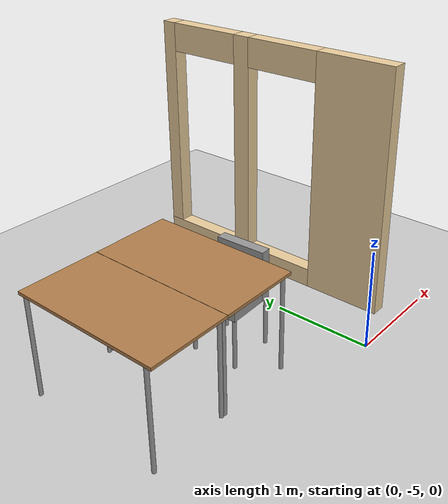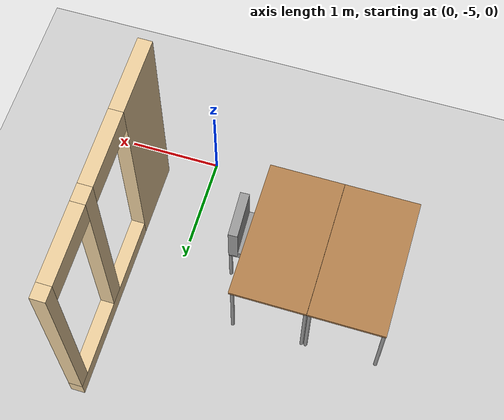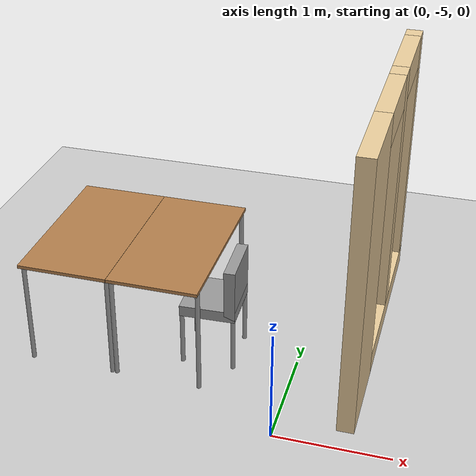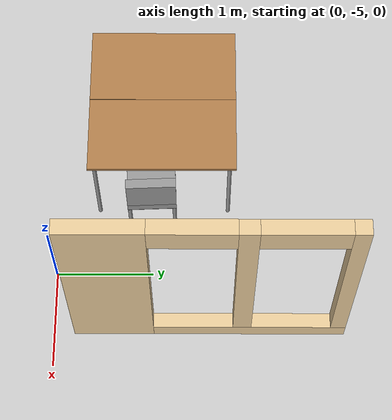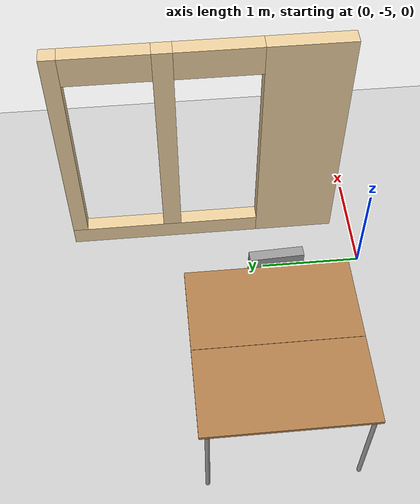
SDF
<sdf version="1.6">
 <world name="default">
  <model name="ground_plane">
   <static>1</static>
   <link name="link">
    <collision name="collision">
     <geometry><plane><normal>0 0 1</normal><size>100 100</size></plane></geometry>
     <surface>
      <contact><collide_bitmask>65535</collide_bitmask></contact>
      <friction><ode><mu>100</mu><mu2>50</mu2></ode></friction>
     </surface>
    </collision>
    <visual name="visual">
     <cast_shadows>0</cast_shadows>
     <geometry><plane><normal>0 0 1</normal><size>100 100</size></plane></geometry>
     <material>
      <script><uri>file://media/materials/scripts/gazebo.material</uri><name>Gazebo/Grey</name></script>
     </material>
    </visual>
   </link>
  </model>
  <model name="dunder_mifflin_scranton_full">
   <pose>4.5312 0.479645 0 0 -0 0</pose>
   <link name="Wall_28">
    <pose>-3.95331 -3.89431 0 0 -0 1.5708</pose>
    <visual name="Wall_28_Visual_0">
     <pose>-0.969422 0 1.25 0 -0 0</pose>
     <geometry><box><size>0.811156 0.15 2.5</size></box></geometry>
     <material>
      <script><uri>file://media/materials/scripts/gazebo.material</uri><name>Gazebo/Grey</name></script>
      <ambient>0.921569 0.807843 0.615686 1</ambient>
     </material>
     <meta><layer>0</layer></meta>
    </visual>
    <collision name="Wall_28_Collision_0">
     <geometry><box><size>0.811156 0.15 2.5</size></box></geometry>
     <pose>-0.969422 0 1.25 0 -0 0</pose>
    </collision>
    <visual name="Wall_28_Visual_1">
     <pose>0.405578 0 0.1 0 -0 0</pose>
     <geometry><box><size>1.93884 0.15 0.2</size></box></geometry>
     <material>
      <script><uri>file://media/materials/scripts/gazebo.material</uri><name>Gazebo/Grey</name></script>
      <ambient>0.921569 0.807843 0.615686 1</ambient>
     </material>
     <meta><layer>0</layer></meta>
    </visual>
    <collision name="Wall_28_Collision_1">
     <geometry><box><size>1.93884 0.15 0.2</size></box></geometry>
     <pose>0.405578 0 0.1 0 -0 0</pose>
    </collision>
    <visual name="Wall_28_Visual_2">
     <pose>0.328659 0 1.35 0 -0 0</pose>
     <geometry><box><size>0.185005 0.15 2.3</size></box></geometry>
     <material>
      <script><uri>file://media/materials/scripts/gazebo.material</uri><name>Gazebo/Grey</name></script>
      <ambient>0.921569 0.807843 0.615686 1</ambient>
     </material>
     <meta><layer>0</layer></meta>
    </visual>
    <collision name="Wall_28_Collision_2">
     <geometry><box><size>0.185005 0.15 2.3</size></box></geometry>
     <pose>0.328659 0 1.35 0 -0 0</pose>
    </collision>
    <visual name="Wall_28_Visual_3">
     <pose>1.29808 0 1.35 0 -0 0</pose>
     <geometry><box><size>0.153838 0.15 2.3</size></box></geometry>
     <material>
      <script><uri>file://media/materials/scripts/gazebo.material</uri><name>Gazebo/Grey</name></script>
      <ambient>0.921569 0.807843 0.615686 1</ambient>
     </material>
     <meta><layer>0</layer></meta>
    </visual>
    <collision name="Wall_28_Collision_3">
     <geometry><box><size>0.153838 0.15 2.3</size></box></geometry>
     <pose>1.29808 0 1.35 0 -0 0</pose>
    </collision>
    <visual name="Wall_28_Visual_4">
     <pose>-0.163844 0 2.35 0 -0 0</pose>
     <geometry><box><size>0.8 0.15 0.3</size></box></geometry>
     <material>
      <script><uri>file://media/materials/scripts/gazebo.material</uri><name>Gazebo/Grey</name></script>
      <ambient>0.921569 0.807843 0.615686 1</ambient>
     </material>
     <meta><layer>0</layer></meta>
    </visual>
    <collision name="Wall_28_Collision_4">
     <geometry><box><size>0.8 0.15 0.3</size></box></geometry>
     <pose>-0.163844 0 2.35 0 -0 0</pose>
    </collision>
    <visual name="Wall_28_Visual_5">
     <pose>0.821162 0 2.35 0 -0 0</pose>
     <geometry><box><size>0.8 0.15 0.3</size></box></geometry>
     <material>
      <script><uri>file://media/materials/scripts/gazebo.material</uri><name>Gazebo/Grey</name></script>
      <ambient>0.921569 0.807843 0.615686 1</ambient>
     </material>
     <meta><layer>0</layer></meta>
    </visual>
    <collision name="Wall_28_Collision_5">
     <geometry><box><size>0.8 0.15 0.3</size></box></geometry>
     <pose>0.821162 0 2.35 0 -0 0</pose>
    </collision>
   </link>
   <static>1</static>
  </model>
  <model name="table_4">
   <static>1</static>
   <link name="link">
    <collision name="surface">
     <pose>0 0 1 0 -0 0</pose>
     <geometry><box><size>1.5 0.8 0.03</size></box></geometry>
     <surface><friction><ode><mu>0.6</mu><mu2>0.6</mu2></ode></friction></surface>
    </collision>
    <visual name="visual1">
     <pose>0 0 1 0 -0 0</pose>
     <geometry><box><size>1.5 0.8 0.03</size></box></geometry>
     <material>
      <script><uri>file://media/materials/scripts/gazebo.material</uri><name>Gazebo/Wood</name></script>
     </material>
    </visual>
    <collision name="front_left_leg">
     <pose>0.68 0.38 0.5 0 -0 0</pose>
     <geometry><cylinder><radius>0.02</radius><length>1</length></cylinder></geometry>
    </collision>
    <visual name="front_left_leg">
     <pose>0.68 0.38 0.5 0 -0 0</pose>
     <geometry><cylinder><radius>0.02</radius><length>1</length></cylinder></geometry>
     <material>
      <script><uri>file://media/materials/scripts/gazebo.material</uri><name>Gazebo/Grey</name></script>
     </material>
    </visual>
    <collision name="front_right_leg">
     <pose>0.68 -0.38 0.5 0 -0 0</pose>
     <geometry><cylinder><radius>0.02</radius><length>1</length></cylinder></geometry>
    </collision>
    <visual name="front_right_leg">
     <pose>0.68 -0.38 0.5 0 -0 0</pose>
     <geometry><cylinder><radius>0.02</radius><length>1</length></cylinder></geometry>
     <material>
      <script><uri>file://media/materials/scripts/gazebo.material</uri><name>Gazebo/Grey</name></script>
     </material>
    </visual>
    <collision name="back_right_leg">
     <pose>-0.68 -0.38 0.5 0 -0 0</pose>
     <geometry><cylinder><radius>0.02</radius><length>1</length></cylinder></geometry>
    </collision>
    <visual name="back_right_leg">
     <pose>-0.68 -0.38 0.5 0 -0 0</pose>
     <geometry><cylinder><radius>0.02</radius><length>1</length></cylinder></geometry>
     <material>
      <script><uri>file://media/materials/scripts/gazebo.material</uri><name>Gazebo/Grey</name></script>
     </material>
    </visual>
    <collision name="back_left_leg">
     <pose>-0.68 0.38 0.5 0 -0 0</pose>
     <geometry><cylinder><radius>0.02</radius><length>1</length></cylinder></geometry>
    </collision>
    <visual name="back_left_leg">
     <pose>-0.68 0.38 0.5 0 -0 0</pose>
     <geometry><cylinder><radius>0.02</radius><length>1</length></cylinder></geometry>
     <material>
      <script><uri>file://media/materials/scripts/gazebo.material</uri><name>Gazebo/Grey</name></script>
     </material>
    </visual>
   </link>
   <pose>-1.12281 -3.89384 0 0 -0 1.5708</pose>
  </model>
  <model name="table_5">
   <static>1</static>
   <link name="link">
    <collision name="surface">
     <pose>0 0 1 0 -0 0</pose>
     <geometry><box><size>1.5 0.8 0.03</size></box></geometry>
     <surface><friction><ode><mu>0.6</mu><mu2>0.6</mu2></ode></friction></surface>
    </collision>
    <visual name="visual1">
     <pose>0 0 1 0 -0 0</pose>
     <geometry><box><size>1.5 0.8 0.03</size></box></geometry>
     <material>
      <script><uri>file://media/materials/scripts/gazebo.material</uri><name>Gazebo/Wood</name></script>
     </material>
    </visual>
    <collision name="front_left_leg">
     <pose>0.68 0.38 0.5 0 -0 0</pose>
     <geometry><cylinder><radius>0.02</radius><length>1</length></cylinder></geometry>
    </collision>
    <visual name="front_left_leg">
     <pose>0.68 0.38 0.5 0 -0 0</pose>
     <geometry><cylinder><radius>0.02</radius><length>1</length></cylinder></geometry>
     <material>
      <script><uri>file://media/materials/scripts/gazebo.material</uri><name>Gazebo/Grey</name></script>
     </material>
    </visual>
    <collision name="front_right_leg">
     <pose>0.68 -0.38 0.5 0 -0 0</pose>
     <geometry><cylinder><radius>0.02</radius><length>1</length></cylinder></geometry>
    </collision>
    <visual name="front_right_leg">
     <pose>0.68 -0.38 0.5 0 -0 0</pose>
     <geometry><cylinder><radius>0.02</radius><length>1</length></cylinder></geometry>
     <material>
      <script><uri>file://media/materials/scripts/gazebo.material</uri><name>Gazebo/Grey</name></script>
     </material>
    </visual>
    <collision name="back_right_leg">
     <pose>-0.68 -0.38 0.5 0 -0 0</pose>
     <geometry><cylinder><radius>0.02</radius><length>1</length></cylinder></geometry>
    </collision>
    <visual name="back_right_leg">
     <pose>-0.68 -0.38 0.5 0 -0 0</pose>
     <geometry><cylinder><radius>0.02</radius><length>1</length></cylinder></geometry>
     <material>
      <script><uri>file://media/materials/scripts/gazebo.material</uri><name>Gazebo/Grey</name></script>
     </material>
    </visual>
    <collision name="back_left_leg">
     <pose>-0.68 0.38 0.5 0 -0 0</pose>
     <geometry><cylinder><radius>0.02</radius><length>1</length></cylinder></geometry>
    </collision>
    <visual name="back_left_leg">
     <pose>-0.68 0.38 0.5 0 -0 0</pose>
     <geometry><cylinder><radius>0.02</radius><length>1</length></cylinder></geometry>
     <material>
      <script><uri>file://media/materials/scripts/gazebo.material</uri><name>Gazebo/Grey</name></script>
     </material>
    </visual>
   </link>
   <pose>-1.92454 -3.89377 0 0 -0 1.5708</pose>
  </model>
  <model name="chair_2">
   <link name="link_0">
    <inertial>
     <mass>1</mass>
     <inertia><ixx>0.145833</ixx><ixy>0</ixy><ixz>0</ixz><iyy>0.145833</iyy><iyz>0</iyz><izz>0.125</izz></inertia>
    </inertial>
    <pose>-0.23 -0.19667 -0.280001 0 -0 0</pose>
    <visual name="visual">
     <geometry><cylinder><radius>0.02</radius><length>0.5</length></cylinder></geometry>
     <material>
      <lighting>1</lighting>
      <script><uri>file://media/materials/scripts/gazebo.material</uri><name>Gazebo/Grey</name></script>
      <shader type="vertex"><normal_map>__default__</normal_map></shader>
      <ambient>0.3 0.3 0.3 1</ambient>
      <diffuse>0.7 0.7 0.7 1</diffuse>
      <specular>0.01 0.01 0.01 1</specular>
      <emissive>0 0 0 1</emissive>
     </material>
    </visual>
    <collision name="collision">
     <geometry><cylinder><radius>0.02</radius><length>0.5</length></cylinder></geometry>
     <surface>
      <friction>
       <ode><mu>1</mu><mu2>1</mu2><fdir1>0 0 0</fdir1><slip1>0</slip1><slip2>0</slip2></ode>
       <torsional>
        <coefficient>1</coefficient>
        <patch_radius>0</patch_radius>
        <surface_radius>0</surface_radius>
        <use_patch_radius>1</use_patch_radius>
        <ode><slip>0</slip></ode>
       </torsional>
      </friction>
      <bounce><restitution_coefficient>0</restitution_coefficient><threshold>1e+06</threshold></bounce>
      <contact>
       <collide_without_contact>0</collide_without_contact>
       <collide_without_contact_bitmask>1</collide_without_contact_bitmask>
       <collide_bitmask>1</collide_bitmask>
       <ode>
        <soft_cfm>0</soft_cfm>
        <soft_erp>0.2</soft_erp>
        <kp>1e+13</kp>
        <kd>1</kd>
        <max_vel>0.01</max_vel>
        <min_depth>0</min_depth>
       </ode>
       <bullet>
        <split_impulse>1</split_impulse>
        <split_impulse_penetration_threshold>-0.01</split_impulse_penetration_threshold>
        <soft_cfm>0</soft_cfm>
        <soft_erp>0.2</soft_erp>
        <kp>1e+13</kp>
        <kd>1</kd>
       </bullet>
      </contact>
     </surface>
    </collision>
   </link>
   <link name="link_0_clone">
    <inertial>
     <mass>1</mass>
     <inertia><ixx>0.145833</ixx><ixy>0</ixy><ixz>0</ixz><iyy>0.145833</iyy><iyz>0</iyz><izz>0.125</izz></inertia>
    </inertial>
    <pose>0.23 -0.19667 -0.280001 0 -0 0</pose>
    <visual name="visual">
     <geometry><cylinder><radius>0.02</radius><length>0.5</length></cylinder></geometry>
     <material>
      <lighting>1</lighting>
      <script><uri>file://media/materials/scripts/gazebo.material</uri><name>Gazebo/Grey</name></script>
      <shader type="vertex"><normal_map>__default__</normal_map></shader>
      <ambient>0.3 0.3 0.3 1</ambient>
      <diffuse>0.7 0.7 0.7 1</diffuse>
      <specular>0.01 0.01 0.01 1</specular>
      <emissive>0 0 0 1</emissive>
     </material>
    </visual>
    <collision name="collision">
     <geometry><cylinder><radius>0.02</radius><length>0.5</length></cylinder></geometry>
     <surface>
      <friction>
       <ode><mu>1</mu><mu2>1</mu2><fdir1>0 0 0</fdir1><slip1>0</slip1><slip2>0</slip2></ode>
       <torsional>
        <coefficient>1</coefficient>
        <patch_radius>0</patch_radius>
        <surface_radius>0</surface_radius>
        <use_patch_radius>1</use_patch_radius>
        <ode><slip>0</slip></ode>
       </torsional>
      </friction>
      <bounce><restitution_coefficient>0</restitution_coefficient><threshold>1e+06</threshold></bounce>
      <contact>
       <collide_without_contact>0</collide_without_contact>
       <collide_without_contact_bitmask>1</collide_without_contact_bitmask>
       <collide_bitmask>1</collide_bitmask>
       <ode>
        <soft_cfm>0</soft_cfm>
        <soft_erp>0.2</soft_erp>
        <kp>1e+13</kp>
        <kd>1</kd>
        <max_vel>0.01</max_vel>
        <min_depth>0</min_depth>
       </ode>
       <bullet>
        <split_impulse>1</split_impulse>
        <split_impulse_penetration_threshold>-0.01</split_impulse_penetration_threshold>
        <soft_cfm>0</soft_cfm>
        <soft_erp>0.2</soft_erp>
        <kp>1e+13</kp>
        <kd>1</kd>
       </bullet>
      </contact>
     </surface>
    </collision>
   </link>
   <link name="link_0_clone_0">
    <inertial>
     <mass>1</mass>
     <inertia><ixx>0.145833</ixx><ixy>0</ixy><ixz>0</ixz><iyy>0.145833</iyy><iyz>0</iyz><izz>0.125</izz></inertia>
    </inertial>
    <pose>0.23 0.26333 -0.280001 0 -0 0</pose>
    <visual name="visual">
     <geometry><cylinder><radius>0.02</radius><length>0.5</length></cylinder></geometry>
     <material>
      <lighting>1</lighting>
      <script><uri>file://media/materials/scripts/gazebo.material</uri><name>Gazebo/Grey</name></script>
      <shader type="vertex"><normal_map>__default__</normal_map></shader>
      <ambient>0.3 0.3 0.3 1</ambient>
      <diffuse>0.7 0.7 0.7 1</diffuse>
      <specular>0.01 0.01 0.01 1</specular>
      <emissive>0 0 0 1</emissive>
     </material>
    </visual>
    <collision name="collision">
     <geometry><cylinder><radius>0.02</radius><length>0.5</length></cylinder></geometry>
     <surface>
      <friction>
       <ode><mu>1</mu><mu2>1</mu2><fdir1>0 0 0</fdir1><slip1>0</slip1><slip2>0</slip2></ode>
       <torsional>
        <coefficient>1</coefficient>
        <patch_radius>0</patch_radius>
        <surface_radius>0</surface_radius>
        <use_patch_radius>1</use_patch_radius>
        <ode><slip>0</slip></ode>
       </torsional>
      </friction>
      <bounce><restitution_coefficient>0</restitution_coefficient><threshold>1e+06</threshold></bounce>
      <contact>
       <collide_without_contact>0</collide_without_contact>
       <collide_without_contact_bitmask>1</collide_without_contact_bitmask>
       <collide_bitmask>1</collide_bitmask>
       <ode>
        <soft_cfm>0</soft_cfm>
        <soft_erp>0.2</soft_erp>
        <kp>1e+13</kp>
        <kd>1</kd>
        <max_vel>0.01</max_vel>
        <min_depth>0</min_depth>
       </ode>
       <bullet>
        <split_impulse>1</split_impulse>
        <split_impulse_penetration_threshold>-0.01</split_impulse_penetration_threshold>
        <soft_cfm>0</soft_cfm>
        <soft_erp>0.2</soft_erp>
        <kp>1e+13</kp>
        <kd>1</kd>
       </bullet>
      </contact>
     </surface>
    </collision>
   </link>
   <link name="link_0_clone_1">
    <inertial>
     <mass>1</mass>
     <inertia><ixx>0.145833</ixx><ixy>0</ixy><ixz>0</ixz><iyy>0.145833</iyy><iyz>0</iyz><izz>0.125</izz></inertia>
    </inertial>
    <pose>-0.23 0.26333 -0.280001 0 -0 0</pose>
    <visual name="visual">
     <geometry><cylinder><radius>0.02</radius><length>0.5</length></cylinder></geometry>
     <material>
      <lighting>1</lighting>
      <script><uri>file://media/materials/scripts/gazebo.material</uri><name>Gazebo/Grey</name></script>
      <shader type="vertex"><normal_map>__default__</normal_map></shader>
      <ambient>0.3 0.3 0.3 1</ambient>
      <diffuse>0.7 0.7 0.7 1</diffuse>
      <specular>0.01 0.01 0.01 1</specular>
      <emissive>0 0 0 1</emissive>
     </material>
    </visual>
    <collision name="collision">
     <geometry><cylinder><radius>0.02</radius><length>0.5</length></cylinder></geometry>
     <surface>
      <friction>
       <ode><mu>1</mu><mu2>1</mu2><fdir1>0 0 0</fdir1><slip1>0</slip1><slip2>0</slip2></ode>
       <torsional>
        <coefficient>1</coefficient>
        <patch_radius>0</patch_radius>
        <surface_radius>0</surface_radius>
        <use_patch_radius>1</use_patch_radius>
        <ode><slip>0</slip></ode>
       </torsional>
      </friction>
      <bounce><restitution_coefficient>0</restitution_coefficient><threshold>1e+06</threshold></bounce>
      <contact>
       <collide_without_contact>0</collide_without_contact>
       <collide_without_contact_bitmask>1</collide_without_contact_bitmask>
       <collide_bitmask>1</collide_bitmask>
       <ode>
        <soft_cfm>0</soft_cfm>
        <soft_erp>0.2</soft_erp>
        <kp>1e+13</kp>
        <kd>1</kd>
        <max_vel>0.01</max_vel>
        <min_depth>0</min_depth>
       </ode>
       <bullet>
        <split_impulse>1</split_impulse>
        <split_impulse_penetration_threshold>-0.01</split_impulse_penetration_threshold>
        <soft_cfm>0</soft_cfm>
        <soft_erp>0.2</soft_erp>
        <kp>1e+13</kp>
        <kd>1</kd>
       </bullet>
      </contact>
     </surface>
    </collision>
   </link>
   <link name="link_2">
    <inertial>
     <mass>1</mass>
     <inertia>
      <ixx>0.166667</ixx>
      <ixy>0</ixy>
      <ixz>0</ixz>
      <iyy>0.166667</iyy>
      <iyz>0</iyz>
      <izz>0.166667</izz>
     </inertia>
    </inertial>
    <pose>0 0.03333 0.019999 0 -0 0</pose>
    <visual name="visual">
     <geometry><box><size>0.5 0.5 0.1</size></box></geometry>
     <material>
      <lighting>1</lighting>
      <script><uri>file://media/materials/scripts/gazebo.material</uri><name>Gazebo/Grey</name></script>
      <shader type="vertex"><normal_map>__default__</normal_map></shader>
      <ambient>0.3 0.3 0.3 1</ambient>
      <diffuse>0.7 0.7 0.7 1</diffuse>
      <specular>0.01 0.01 0.01 1</specular>
      <emissive>0 0 0 1</emissive>
     </material>
    </visual>
    <collision name="collision">
     <geometry><box><size>0.5 0.5 0.1</size></box></geometry>
     <surface>
      <friction>
       <ode><mu>1</mu><mu2>1</mu2><fdir1>0 0 0</fdir1><slip1>0</slip1><slip2>0</slip2></ode>
       <torsional>
        <coefficient>1</coefficient>
        <patch_radius>0</patch_radius>
        <surface_radius>0</surface_radius>
        <use_patch_radius>1</use_patch_radius>
        <ode><slip>0</slip></ode>
       </torsional>
      </friction>
      <bounce><restitution_coefficient>0</restitution_coefficient><threshold>1e+06</threshold></bounce>
      <contact>
       <collide_without_contact>0</collide_without_contact>
       <collide_without_contact_bitmask>1</collide_without_contact_bitmask>
       <collide_bitmask>1</collide_bitmask>
       <ode>
        <soft_cfm>0</soft_cfm>
        <soft_erp>0.2</soft_erp>
        <kp>1e+13</kp>
        <kd>1</kd>
        <max_vel>0.01</max_vel>
        <min_depth>0</min_depth>
       </ode>
       <bullet>
        <split_impulse>1</split_impulse>
        <split_impulse_penetration_threshold>-0.01</split_impulse_penetration_threshold>
        <soft_cfm>0</soft_cfm>
        <soft_erp>0.2</soft_erp>
        <kp>1e+13</kp>
        <kd>1</kd>
       </bullet>
      </contact>
     </surface>
    </collision>
   </link>
   <link name="link_2_clone">
    <inertial>
     <mass>1</mass>
     <inertia>
      <ixx>0.166667</ixx>
      <ixy>0</ixy>
      <ixz>0</ixz>
      <iyy>0.166667</iyy>
      <iyz>0</iyz>
      <izz>0.166667</izz>
     </inertia>
    </inertial>
    <pose>0 -0.166646 0.220004 1.5707 -0 0</pose>
    <visual name="visual">
     <geometry><box><size>0.5 0.5 0.1</size></box></geometry>
     <material>
      <lighting>1</lighting>
      <script><uri>file://media/materials/scripts/gazebo.material</uri><name>Gazebo/Grey</name></script>
      <shader type="vertex"><normal_map>__default__</normal_map></shader>
      <ambient>0.3 0.3 0.3 1</ambient>
      <diffuse>0.7 0.7 0.7 1</diffuse>
      <specular>0.01 0.01 0.01 1</specular>
      <emissive>0 0 0 1</emissive>
     </material>
    </visual>
    <collision name="collision">
     <geometry><box><size>0.5 0.5 0.1</size></box></geometry>
     <surface>
      <friction>
       <ode><mu>1</mu><mu2>1</mu2><fdir1>0 0 0</fdir1><slip1>0</slip1><slip2>0</slip2></ode>
       <torsional>
        <coefficient>1</coefficient>
        <patch_radius>0</patch_radius>
        <surface_radius>0</surface_radius>
        <use_patch_radius>1</use_patch_radius>
        <ode><slip>0</slip></ode>
       </torsional>
      </friction>
      <bounce><restitution_coefficient>0</restitution_coefficient><threshold>1e+06</threshold></bounce>
      <contact>
       <collide_without_contact>0</collide_without_contact>
       <collide_without_contact_bitmask>1</collide_without_contact_bitmask>
       <collide_bitmask>1</collide_bitmask>
       <ode>
        <soft_cfm>0</soft_cfm>
        <soft_erp>0.2</soft_erp>
        <kp>1e+13</kp>
        <kd>1</kd>
        <max_vel>0.01</max_vel>
        <min_depth>0</min_depth>
       </ode>
       <bullet>
        <split_impulse>1</split_impulse>
        <split_impulse_penetration_threshold>-0.01</split_impulse_penetration_threshold>
        <soft_cfm>0</soft_cfm>
        <soft_erp>0.2</soft_erp>
        <kp>1e+13</kp>
        <kd>1</kd>
       </bullet>
      </contact>
     </surface>
    </collision>
   </link>
   <joint name="link_0_clone_JOINT_2" type="fixed">
    <parent>link_2</parent>
    <child>link_0_clone</child>
    <physics>
     <ode><limit><cfm>0</cfm><erp>0.2</erp></limit><suspension><cfm>0</cfm><erp>0.2</erp></suspension></ode>
    </physics>
   </joint>
   <joint name="link_2_JOINT_1" type="fixed">
    <parent>link_2</parent>
    <child>link_0</child>
    <physics>
     <ode><limit><cfm>0</cfm><erp>0.2</erp></limit><suspension><cfm>0</cfm><erp>0.2</erp></suspension></ode>
    </physics>
   </joint>
   <joint name="link_2_JOINT_3" type="fixed">
    <parent>link_2</parent>
    <child>link_0_clone_0</child>
    <physics>
     <ode><limit><cfm>0</cfm><erp>0.2</erp></limit><suspension><cfm>0</cfm><erp>0.2</erp></suspension></ode>
    </physics>
   </joint>
   <joint name="link_2_JOINT_4" type="fixed">
    <parent>link_2</parent>
    <child>link_0_clone_1</child>
    <physics>
     <ode><limit><cfm>0</cfm><erp>0.2</erp></limit><suspension><cfm>0</cfm><erp>0.2</erp></suspension></ode>
    </physics>
   </joint>
   <joint name="link_2_JOINT_5" type="fixed">
    <parent>link_2</parent>
    <child>link_2_clone</child>
    <physics>
     <ode><limit><cfm>0</cfm><erp>0.2</erp></limit><suspension><cfm>0</cfm><erp>0.2</erp></suspension></ode>
    </physics>
   </joint>
   <static>0</static>
   <pose>-0.739616 -4.01113 0.529993 0 -0 1.61095</pose>
  </model>
 </world>
</sdf>
